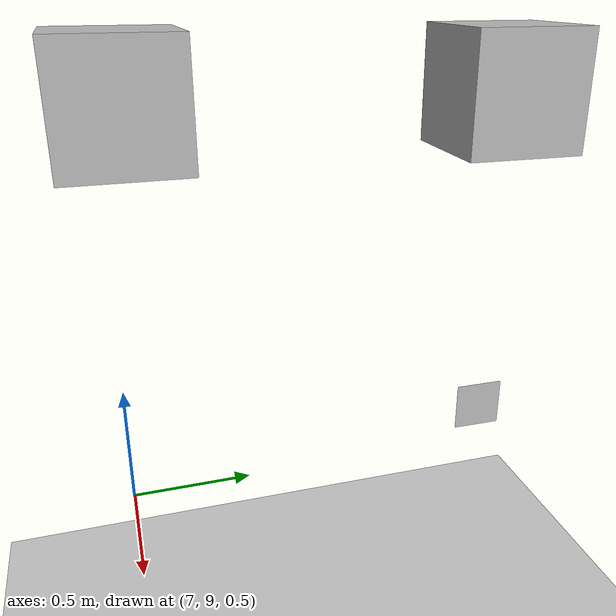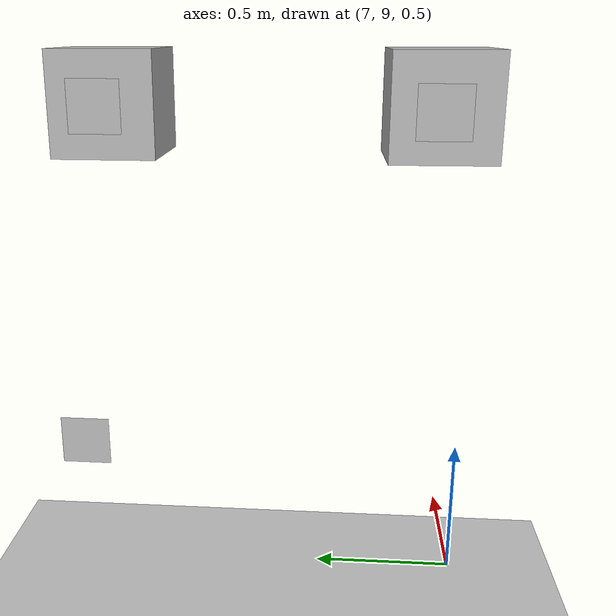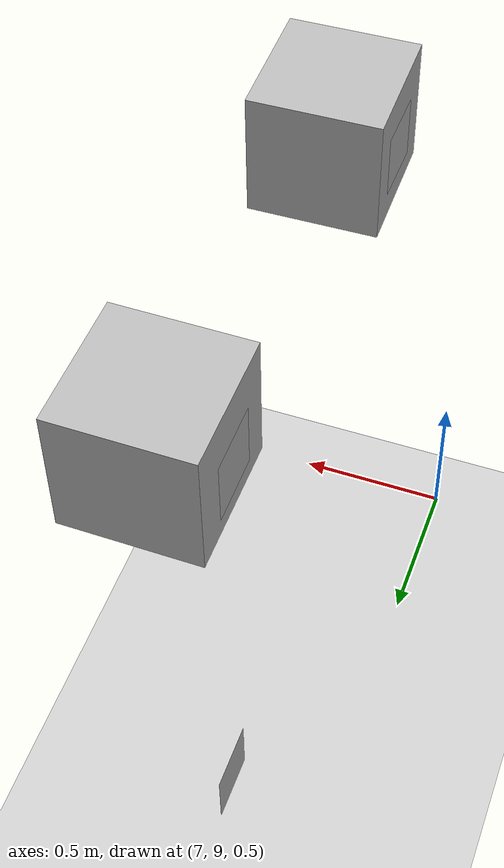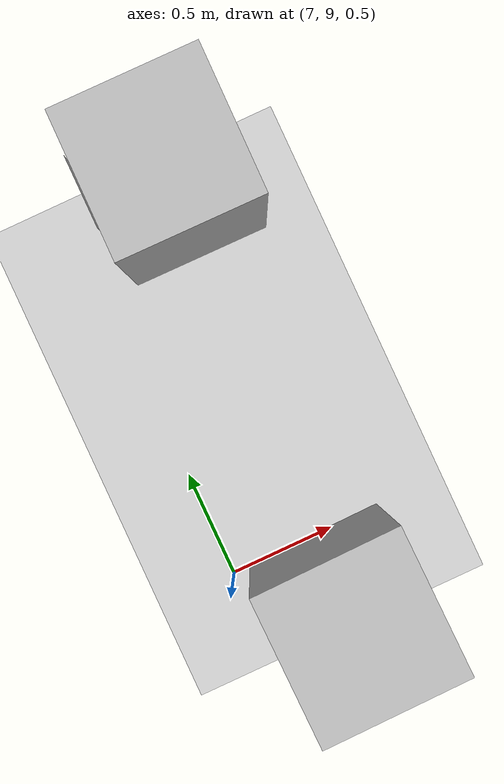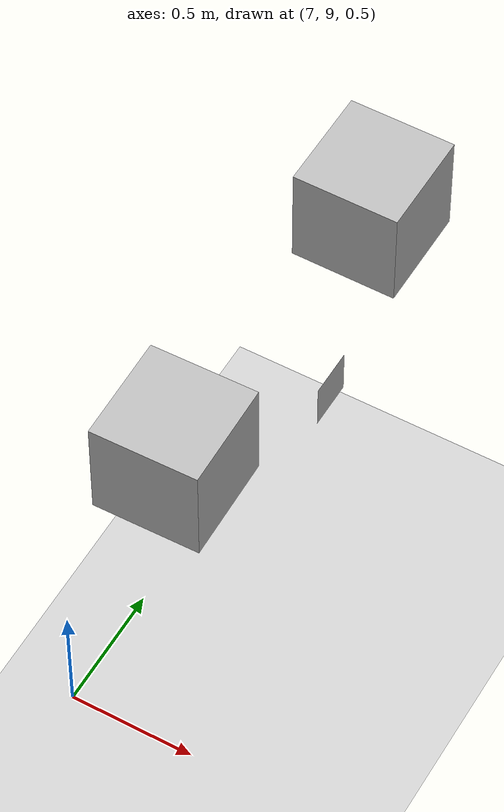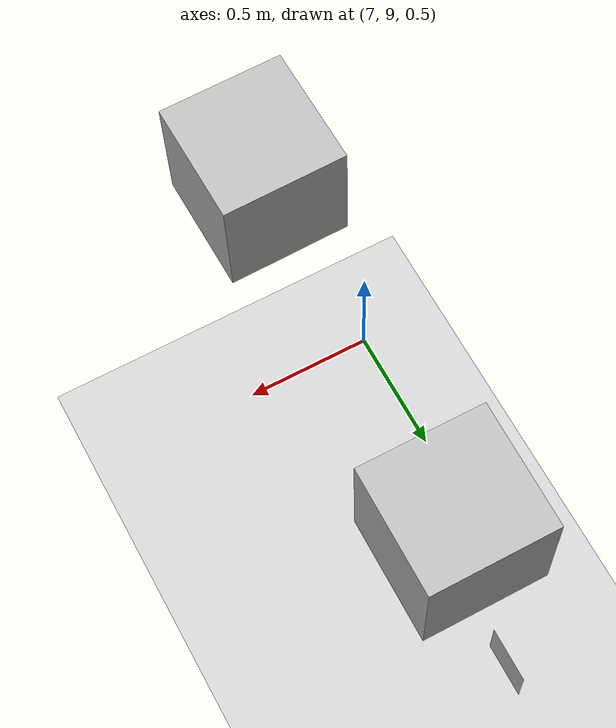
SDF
<sdf version="1.6">
 <world name="default">
  <model name="ground_plane">
   <static>1</static>
   <link name="link">
    <collision name="collision">
     <geometry><plane><normal>0 0 1</normal><size>300 300</size></plane></geometry>
     <surface>
      <contact><collide_bitmask>65535</collide_bitmask></contact>
      <friction><ode><mu>100</mu><mu2>50</mu2></ode></friction>
     </surface>
    </collision>
    <visual name="visual">
     <geometry><plane><normal>0 0 1</normal><size>100 100</size></plane></geometry>
     <material>
      <script><uri>file://media/materials/scripts/gazebo.material</uri><name>Gazebo/Grey</name></script>
     </material>
    </visual>
   </link>
  </model>
  <model name="CuboQR9">
   <link name="link">
    <pose>-2.00082 0.70939 2.01363 0.229474 0.007293 0.002021</pose>
    <inertial>
     <mass>0.39</mass>
     <inertia><ixx>0.00058</ixx><ixy>0</ixy><ixz>0</ixz><iyy>0.00058</iyy><iyz>0</iyz><izz>0.00019</izz></inertia>
    </inertial>
    <visual name="visual">
     <geometry><box><size>0.4 0.4 0.4</size></box></geometry>
     <material>
      <script>
       <uri>model://Caja/materials/scripts</uri>
       <uri>model://Caja/materials/textures</uri>
       <name>Caja/Diffuse</name>
      </script>
      <shader type="pixel"/>
     </material>
    </visual>
    <collision name="collision">
     <geometry><box><size>0.4 0.4 0.4</size></box></geometry>
     <surface>
      <friction>
       <ode><mu>1</mu><mu2>1</mu2><fdir1>0 0 0</fdir1><slip1>0</slip1><slip2>0</slip2></ode>
       <torsional>
        <coefficient>1</coefficient>
        <patch_radius>0</patch_radius>
        <surface_radius>0</surface_radius>
        <use_patch_radius>1</use_patch_radius>
        <ode><slip>0</slip></ode>
       </torsional>
      </friction>
      <bounce><restitution_coefficient>0</restitution_coefficient><threshold>1e+06</threshold></bounce>
      <contact>
       <collide_without_contact>0</collide_without_contact>
       <collide_without_contact_bitmask>1</collide_without_contact_bitmask>
       <collide_bitmask>1</collide_bitmask>
       <ode>
        <soft_cfm>0</soft_cfm>
        <soft_erp>0.2</soft_erp>
        <kp>1e+13</kp>
        <kd>1</kd>
        <max_vel>0.01</max_vel>
        <min_depth>0</min_depth>
       </ode>
       <bullet>
        <split_impulse>1</split_impulse>
        <split_impulse_penetration_threshold>-0.01</split_impulse_penetration_threshold>
        <soft_cfm>0</soft_cfm>
        <soft_erp>0.2</soft_erp>
        <kp>1e+13</kp>
        <kd>1</kd>
       </bullet>
      </contact>
     </surface>
    </collision>
   </link>
   <static>0</static>
   <pose>6.24234 10.8446 0.190057 -0.27111 1.56321 -1.59622</pose>
  </model>
  <model name="Plano9">
   <link name="link">
    <gravity>0</gravity>
    <pose>0.117106 1.00481 0.58462 0 -0 0</pose>
    <inertial>
     <mass>1e-06</mass>
     <inertia><ixx>0.00058</ixx><ixy>0</ixy><ixz>0</ixz><iyy>0.00058</iyy><iyz>0</iyz><izz>0.00019</izz></inertia>
    </inertial>
    <visual name="visual">
     <geometry><box><size>0.2 1e-06 0.2</size></box></geometry>
     <material>
      <script>
       <uri>model://Plano9/materials/scripts</uri>
       <uri>model://Plano9/materials/textures</uri>
       <name>Plano9/Diffuse</name>
      </script>
      <shader type="pixel"/>
     </material>
     <cast_shadows>0</cast_shadows>
    </visual>
    <collision name="collision">
     <geometry><box><size>0.2 1e-06 0.2</size></box></geometry>
     <surface>
      <friction>
       <ode><mu>1</mu><mu2>1</mu2><fdir1>0 0 0</fdir1><slip1>0</slip1><slip2>0</slip2></ode>
       <torsional>
        <coefficient>1</coefficient>
        <patch_radius>0</patch_radius>
        <surface_radius>0</surface_radius>
        <use_patch_radius>1</use_patch_radius>
        <ode><slip>0</slip></ode>
       </torsional>
      </friction>
      <bounce><restitution_coefficient>0</restitution_coefficient><threshold>1e+06</threshold></bounce>
      <contact>
       <collide_without_contact>0</collide_without_contact>
       <collide_without_contact_bitmask>1</collide_without_contact_bitmask>
       <collide_bitmask>1</collide_bitmask>
       <ode>
        <soft_cfm>0</soft_cfm>
        <soft_erp>0.2</soft_erp>
        <kp>1e+13</kp>
        <kd>1</kd>
        <max_vel>0.01</max_vel>
        <min_depth>0</min_depth>
       </ode>
       <bullet>
        <split_impulse>1</split_impulse>
        <split_impulse_penetration_threshold>-0.01</split_impulse_penetration_threshold>
        <soft_cfm>0</soft_cfm>
        <soft_erp>0.2</soft_erp>
        <kp>1e+13</kp>
        <kd>1</kd>
       </bullet>
      </contact>
     </surface>
    </collision>
   </link>
   <static>0</static>
   <pose>6.2464 10.5924 0.261153 0 0 -1.57778</pose>
  </model>
  <model name="Plano10">
   <link name="link">
    <gravity>0</gravity>
    <pose>1.70124 1.53194 0.640341 0 -0 0</pose>
    <inertial>
     <mass>1e-06</mass>
     <inertia><ixx>0.00058</ixx><ixy>0</ixy><ixz>0</ixz><iyy>0.00058</iyy><iyz>0</iyz><izz>0.00019</izz></inertia>
    </inertial>
    <visual name="visual">
     <geometry><box><size>0.2 1e-06 0.2</size></box></geometry>
     <material>
      <script>
       <uri>model://Plano10/materials/scripts</uri>
       <uri>model://Plano10/materials/textures</uri>
       <name>Plano10/Diffuse</name>
      </script>
      <shader type="pixel"/>
     </material>
     <cast_shadows>0</cast_shadows>
    </visual>
    <collision name="collision">
     <geometry><box><size>0.2 1e-06 0.2</size></box></geometry>
     <surface>
      <friction>
       <ode><mu>1</mu><mu2>1</mu2><fdir1>0 0 0</fdir1><slip1>0</slip1><slip2>0</slip2></ode>
       <torsional>
        <coefficient>1</coefficient>
        <patch_radius>0</patch_radius>
        <surface_radius>0</surface_radius>
        <use_patch_radius>1</use_patch_radius>
        <ode><slip>0</slip></ode>
       </torsional>
      </friction>
      <bounce><restitution_coefficient>0</restitution_coefficient><threshold>1e+06</threshold></bounce>
      <contact>
       <collide_without_contact>0</collide_without_contact>
       <collide_without_contact_bitmask>1</collide_without_contact_bitmask>
       <collide_bitmask>1</collide_bitmask>
       <ode>
        <soft_cfm>0</soft_cfm>
        <soft_erp>0.2</soft_erp>
        <kp>1e+13</kp>
        <kd>1</kd>
        <max_vel>0.01</max_vel>
        <min_depth>0</min_depth>
       </ode>
       <bullet>
        <split_impulse>1</split_impulse>
        <split_impulse_penetration_threshold>-0.01</split_impulse_penetration_threshold>
        <soft_cfm>0</soft_cfm>
        <soft_erp>0.2</soft_erp>
        <kp>1e+13</kp>
        <kd>1</kd>
       </bullet>
      </contact>
     </surface>
    </collision>
   </link>
   <static>0</static>
   <pose>5.69431 10.7913 1.54976 0 0 -1.57552</pose>
  </model>
  <model name="Plano8">
   <link name="link">
    <gravity>0</gravity>
    <pose>-0.330727 1.61593 0.643893 0 -0 0</pose>
    <inertial>
     <mass>1e-06</mass>
     <inertia><ixx>0.00058</ixx><ixy>0</ixy><ixz>0</ixz><iyy>0.00058</iyy><iyz>0</iyz><izz>0.00019</izz></inertia>
    </inertial>
    <visual name="visual">
     <geometry><box><size>0.2 1e-06 0.2</size></box></geometry>
     <material>
      <script>
       <uri>model://Plano8/materials/scripts</uri>
       <uri>model://Plano8/materials/textures</uri>
       <name>Plano8/Diffuse</name>
      </script>
      <shader type="pixel"/>
     </material>
     <cast_shadows>0</cast_shadows>
    </visual>
    <collision name="collision">
     <geometry><box><size>0.2 1e-06 0.2</size></box></geometry>
     <surface>
      <friction>
       <ode><mu>1</mu><mu2>1</mu2><fdir1>0 0 0</fdir1><slip1>0</slip1><slip2>0</slip2></ode>
       <torsional>
        <coefficient>1</coefficient>
        <patch_radius>0</patch_radius>
        <surface_radius>0</surface_radius>
        <use_patch_radius>1</use_patch_radius>
        <ode><slip>0</slip></ode>
       </torsional>
      </friction>
      <bounce><restitution_coefficient>0</restitution_coefficient><threshold>1e+06</threshold></bounce>
      <contact>
       <collide_without_contact>0</collide_without_contact>
       <collide_without_contact_bitmask>1</collide_without_contact_bitmask>
       <collide_bitmask>1</collide_bitmask>
       <ode>
        <soft_cfm>0</soft_cfm>
        <soft_erp>0.2</soft_erp>
        <kp>1e+13</kp>
        <kd>1</kd>
        <max_vel>0.01</max_vel>
        <min_depth>0</min_depth>
       </ode>
       <bullet>
        <split_impulse>1</split_impulse>
        <split_impulse_penetration_threshold>-0.01</split_impulse_penetration_threshold>
        <soft_cfm>0</soft_cfm>
        <soft_erp>0.2</soft_erp>
        <kp>1e+13</kp>
        <kd>1</kd>
       </bullet>
      </contact>
     </surface>
    </collision>
   </link>
   <static>0</static>
   <pose>5.63572 10.0239 1.55665 0 0 -1.57219</pose>
  </model>
  <model name="CuboQR10">
   <link name="link">
    <pose>1.13918 1.07848 -1.74725 -0 -0 -0.643647</pose>
    <inertial>
     <mass>0.39</mass>
     <inertia><ixx>0.00058</ixx><ixy>0</ixy><ixz>0</ixz><iyy>0.00058</iyy><iyz>0</iyz><izz>0.00019</izz></inertia>
    </inertial>
    <visual name="visual">
     <geometry><box><size>0.4 0.4 0.4</size></box></geometry>
     <material>
      <script>
       <uri>model://Caja/materials/scripts</uri>
       <uri>model://Caja/materials/textures</uri>
       <name>Caja/Diffuse</name>
      </script>
      <shader type="pixel"/>
     </material>
    </visual>
    <collision name="collision">
     <geometry><box><size>0.4 0.4 0.4</size></box></geometry>
     <surface>
      <friction>
       <ode><mu>1</mu><mu2>1</mu2><fdir1>0 0 0</fdir1><slip1>0</slip1><slip2>0</slip2></ode>
       <torsional>
        <coefficient>1</coefficient>
        <patch_radius>0</patch_radius>
        <surface_radius>0</surface_radius>
        <use_patch_radius>1</use_patch_radius>
        <ode><slip>0</slip></ode>
       </torsional>
      </friction>
      <bounce><restitution_coefficient>0</restitution_coefficient><threshold>1e+06</threshold></bounce>
      <contact>
       <collide_without_contact>0</collide_without_contact>
       <collide_without_contact_bitmask>1</collide_without_contact_bitmask>
       <collide_bitmask>1</collide_bitmask>
       <ode>
        <soft_cfm>0</soft_cfm>
        <soft_erp>0.2</soft_erp>
        <kp>1e+13</kp>
        <kd>1</kd>
        <max_vel>0.01</max_vel>
        <min_depth>0</min_depth>
       </ode>
       <bullet>
        <split_impulse>1</split_impulse>
        <split_impulse_penetration_threshold>-0.01</split_impulse_penetration_threshold>
        <soft_cfm>0</soft_cfm>
        <soft_erp>0.2</soft_erp>
        <kp>1e+13</kp>
        <kd>1</kd>
       </bullet>
      </contact>
     </surface>
    </collision>
   </link>
   <static>0</static>
   <pose>5.91659 10.0782 0.456817 3.14157 4e-06 0.919329</pose>
  </model>
 </world>
</sdf>
